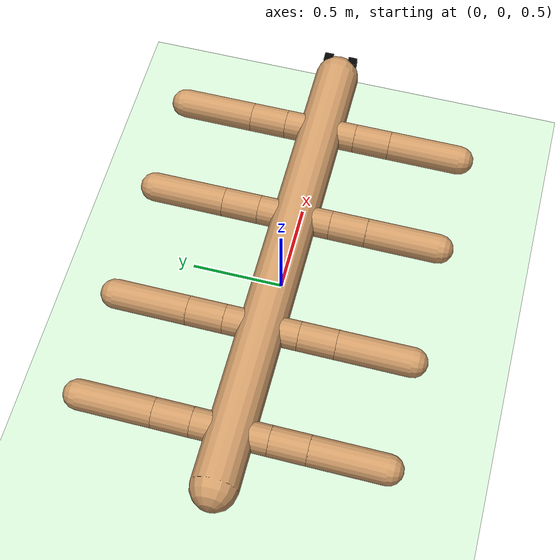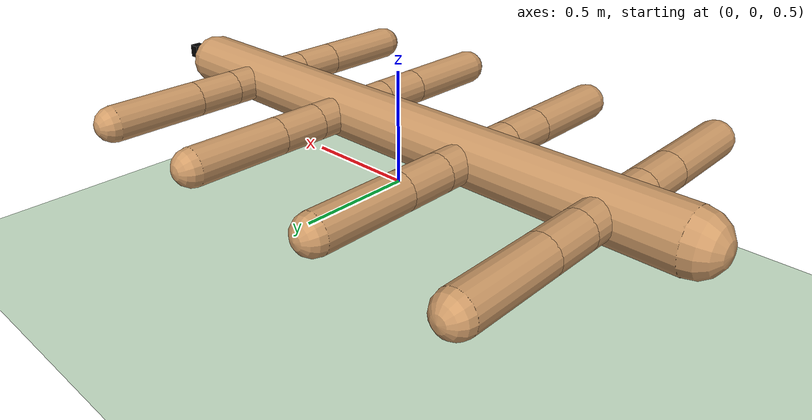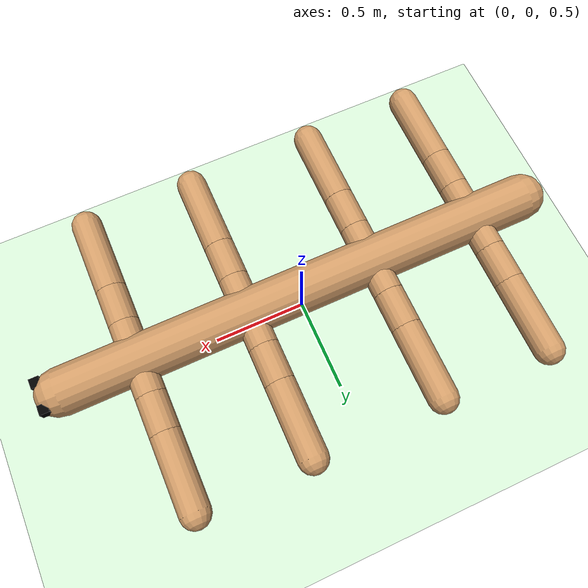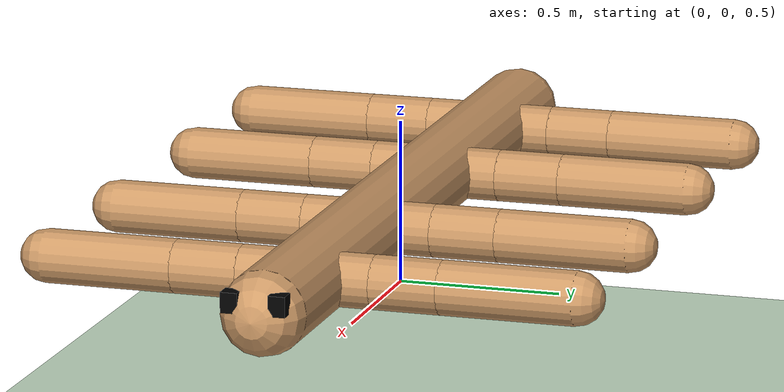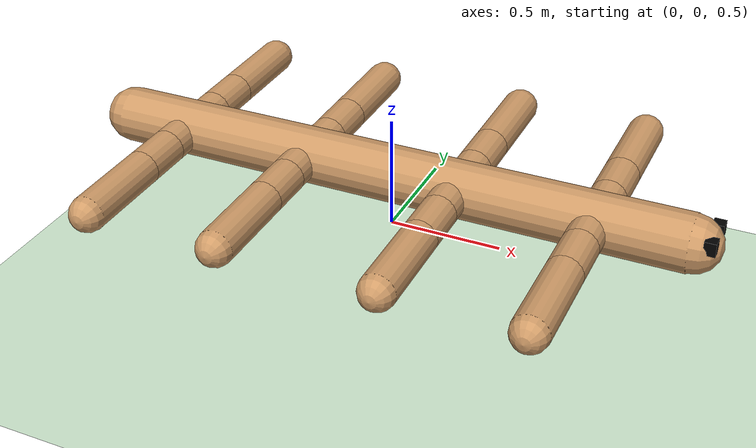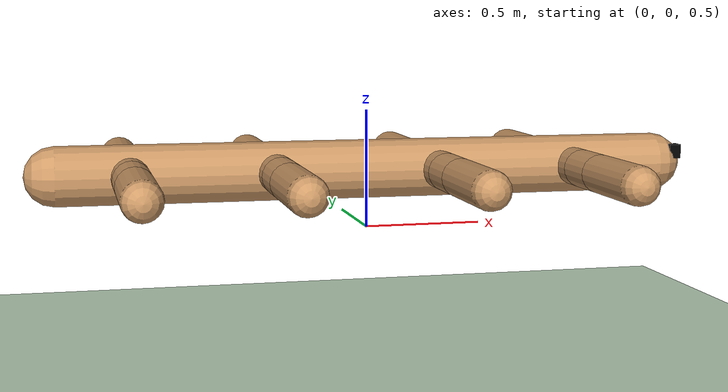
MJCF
<mujoco model="centipede">
  <compiler angle="degree" coordinate="local" inertiafromgeom="true"/>
  <option integrator="RK4" timestep="0.01"/>
  <custom>
    <numeric data="0.0 0.0 0.55 1.0 0.0 0.0 0.0 0.0 1.0 0.0 -1.0 0.0 -1.0 0.0 1.0" name="init_qpos"/>
  </custom>
  <default>
    <joint armature="1" damping="1" limited="true"/>
    <geom conaffinity="0" condim="3" density="5.0" friction="1 0.5 0.5" margin="0.01" rgba="0.8 0.6 0.4 1"/>
  </default>
  <asset>
    <texture builtin="gradient" height="100" rgb1="1 1 1" rgb2="0 0 0" type="skybox" width="100"/>
    <texture builtin="flat" height="1278" mark="cross" markrgb="1 1 1" name="texgeom" random="0.01" rgb1="0.8 0.6 0.4" rgb2="0.8 0.6 0.4" type="cube" width="127"/>
    <texture builtin="checker" height="100" name="texplane" rgb1="0 0 0" rgb2="0.8 0.8 0.8" type="2d" width="100"/>
    <material name="MatPlane" reflectance="0.5" shininess="1" specular="1" texrepeat="60 60" />#texture="texplane"
    <material name="geom" texture="texgeom" texuniform="true"/>
  </asset>
  <worldbody>
    <light cutoff="100" diffuse="1 1 1" dir="-0 0 -1.3" directional="true" exponent="1" pos="0 0 1.3" specular=".1 .1 .1"/>
    <geom conaffinity="1" condim="3" material="MatPlane" name="floor" pos="0 0 0" rgba="0.8 0.9 0.8 1" size="40 40 40" type="plane"/>
    <body name="torso" pos="0 0 0.75">
      <camera name="track" mode="trackcom" pos="0 -3 0.3" xyaxes="1 0 0 0 0 1"/>
      <geom name="torso_geom" axisangle="0 1 0 90" pos="0 0 0" size="0.125 1.3" type="capsule" mass='5'/>
	<geom  name="earL" pos="1.38 0.07 .05" size="0.025 0.025 0.03" rgba="0 0 0 1" type="box"/>
	<geom  name="earR" pos="1.38 -0.07 .05" size="0.025 0.025 0.03" rgba="0 0 0 1" type="box"/>

       <joint armature="0" damping="0" limited="false" margin="0.01" name="root" pos="0 0 0" type="free"/>
      <body name="frontl_leg" pos="0.9 0 0">
        <geom fromto="0.0 0.0 0.0 0.0 0.2 0.0" name="aux_1_geom" size="0.08" type="capsule"/>
        <body name="aux_1" pos="0.0 0.2 0">
          <joint axis="0 0 1" name="hip_1" pos="0.0 0.0 0.0" range="-30 30" type="hinge"/>
          <geom fromto="0.0 0.0 0.0 0.0 0.2 0.0" name="frontl_leg_geom" size="0.08" type="capsule"/>
          <body pos="0.0 0.2 0">
            <joint axis="-1 1 0" name="ankle_1" pos="0.0 0.0 0.0" range="30 70" type="hinge"/>
            <geom fromto="0.0 0.0 0.0 0.0 0.4 0.0" name="frontl_ankle_geom" size="0.08" type="capsule"/>
          </body>
        </body>
      </body>
      <body name="frontr_leg" pos="0.9 0 0">
        <geom fromto="0.0 0.0 0.0 0 -0.2 0.0" name="aux_2_geom" size="0.08" type="capsule"/>
        <body name="aux_2" pos="0 -0.2 0">
          <joint axis="0 0 1" name="hip_2" pos="0.0 0.0 0.0" range="-30 30" type="hinge"/>
          <geom fromto="0.0 0.0 0.0 0 -0.2 0.0" name="frontr_leg_geom" size="0.08" type="capsule"/>
          <body pos="0 -0.2 0">
            <joint axis="-1 1 0" name="ankle_2" pos="0.0 0.0 0.0" range="-70 -30" type="hinge"/>
            <geom fromto="0.0 0.0 0.0 0 -0.4 0.0" name="frontr_ankle_geom" size="0.08" type="capsule"/>
          </body>
        </body>
      </body>

     <body name="middlel_leg" pos="0.3 0 0">
        <geom fromto="0.0 0.0 0.0 0.0 0.2 0.0" name="aux_3_geom" size="0.08" type="capsule"/>
        <body name="aux_3" pos="0.0 0.2 0">
          <joint axis="0 0 1" name="hip_3" pos="0.0 0.0 0.0" range="-30 30" type="hinge"/>
          <geom fromto="0.0 0.0 0.0 0.0 0.2 0.0" name="middlel_leg_geom" size="0.08" type="capsule"/>
          <body pos="0.0 0.2 0">
            <joint axis="-1 1 0" name="ankle_3" pos="0.0 0.0 0.0" range="30 70" type="hinge"/>
            <geom fromto="0.0 0.0 0.0 0.0 0.4 0.0" name="middlel_ankle_geom" size="0.08" type="capsule"/>
          </body>
        </body>
      </body>
      <body name="middler_leg" pos="0.3 0 0">
        <geom fromto="0.0 0.0 0.0 0 -0.2 0.0" name="aux_4_geom" size="0.08" type="capsule"/>
        <body name="aux_4" pos="0 -0.2 0">
          <joint axis="0 0 1" name="hip_4" pos="0.0 0.0 0.0" range="-30 30" type="hinge"/>
          <geom fromto="0.0 0.0 0.0 0 -0.2 0.0" name="middler_leg_geom" size="0.08" type="capsule"/>
          <body pos="0 -0.2 0">
            <joint axis="-1 1 0" name="ankle_4" pos="0.0 0.0 0.0" range="-70 -30" type="hinge"/>
            <geom fromto="0.0 0.0 0.0 0 -0.4 0.0" name="middler_ankle_geom" size="0.08" type="capsule"/>
          </body>
        </body>
      </body>

     <body name="backl_leg" pos="-0.4 0 0">
        <geom fromto="0.0 0.0 0.0 0.0 0.2 0.0" name="aux_5_geom" size="0.08" type="capsule"/>
        <body name="aux_5" pos="0.0 0.2 0">
          <joint axis="0 0 1" name="hip_5" pos="0.0 0.0 0.0" range="-30 30" type="hinge"/>
          <geom fromto="0.0 0.0 0.0 0.0 0.2 0.0" name="backl_leg_geom" size="0.08" type="capsule"/>
          <body pos="0.0 0.2 0">
            <joint axis="-1 1 0" name="ankle_5" pos="0.0 0.0 0.0" range="30 70" type="hinge"/>
            <geom fromto="0.0 0.0 0.0 0.0 0.4 0.0" name="backl_ankle_geom" size="0.08" type="capsule"/>
          </body>
        </body>
      </body>
      <body name="backr_leg" pos="-0.4 0 0">
        <geom fromto="0.0 0.0 0.0 0 -0.2 0.0" name="aux_6_geom" size="0.08" type="capsule"/>
        <body name="aux_6" pos="0 -0.2 0">
          <joint axis="0 0 1" name="hip_6" pos="0.0 0.0 0.0" range="-30 30" type="hinge"/>
          <geom fromto="0.0 0.0 0.0 0 -0.2 0.0" name="backr_leg_geom" size="0.08" type="capsule"/>
          <body pos="0 -0.2 0">
            <joint axis="-1 1 0" name="ankle_6" pos="0.0 0.0 0.0" range="-70 -30" type="hinge"/>
            <geom fromto="0.0 0.0 0.0 0 -0.4 0.0" name="backr_ankle_geom" size="0.08" type="capsule"/>
          </body>
        </body>
      </body>

     <body name="endl_leg" pos="-1 0 0">
        <geom fromto="0.0 0.0 0.0 0.0 0.2 0.0" name="aux_7_geom" size="0.08" type="capsule"/>
        <body name="aux_7" pos="0.0 0.2 0">
          <joint axis="0 0 1" name="hip_7" pos="0.0 0.0 0.0" range="-30 30" type="hinge"/>
          <geom fromto="0.0 0.0 0.0 0.0 0.2 0.0" name="endl_leg_geom" size="0.08" type="capsule"/>
          <body pos="0.0 0.2 0">
            <joint axis="-1 1 0" name="ankle_7" pos="0.0 0.0 0.0" range="30 70" type="hinge"/>
            <geom fromto="0.0 0.0 0.0 0.0 0.4 0.0" name="endl_ankle_geom" size="0.08" type="capsule"/>
          </body>
        </body>
      </body>
      <body name="endr_leg" pos="-1 0 0">
        <geom fromto="0.0 0.0 0.0 0 -0.2 0.0" name="aux_8_geom" size="0.08" type="capsule"/>
        <body name="aux_8" pos="0 -0.2 0">
          <joint axis="0 0 1" name="hip_8" pos="0.0 0.0 0.0" range="-30 30" type="hinge"/>
          <geom fromto="0.0 0.0 0.0 0 -0.2 0.0" name="endr_leg_geom" size="0.08" type="capsule"/>
          <body pos="0 -0.2 0">
            <joint axis="-1 1 0" name="ankle_8" pos="0.0 0.0 0.0" range="-70 -30" type="hinge"/>
            <geom fromto="0.0 0.0 0.0 0 -0.4 0.0" name="endr_ankle_geom" size="0.08" type="capsule"/>
          </body>
        </body>
      </body>
    </body>

  </worldbody>
  <actuator>

    <motor ctrllimited="true" ctrlrange="-1.0 1.0" joint="hip_1" gear="150"/>
    <motor ctrllimited="true" ctrlrange="-1.0 1.0" joint="ankle_1" gear="150"/>

    <motor ctrllimited="true" ctrlrange="-1.0 1.0" joint="hip_2" gear="150"/>
    <motor ctrllimited="true" ctrlrange="-1.0 1.0" joint="ankle_2" gear="150"/>

    <motor ctrllimited="true" ctrlrange="-1.0 1.0" joint="hip_3" gear="150"/>
    <motor ctrllimited="true" ctrlrange="-1.0 1.0" joint="ankle_3" gear="150"/>

    <motor ctrllimited="true" ctrlrange="-1.0 1.0" joint="hip_4" gear="150"/>
    <motor ctrllimited="true" ctrlrange="-1.0 1.0" joint="ankle_4" gear="150"/>

    <motor ctrllimited="true" ctrlrange="-1.0 1.0" joint="hip_5" gear="150"/>
    <motor ctrllimited="true" ctrlrange="-1.0 1.0" joint="ankle_5" gear="150"/>

    <motor ctrllimited="true" ctrlrange="-1.0 1.0" joint="hip_6" gear="150"/>
    <motor ctrllimited="true" ctrlrange="-1.0 1.0" joint="ankle_6" gear="150"/>

    <motor ctrllimited="true" ctrlrange="-1.0 1.0" joint="hip_7" gear="150"/>
    <motor ctrllimited="true" ctrlrange="-1.0 1.0" joint="ankle_7" gear="150"/>

    <motor ctrllimited="true" ctrlrange="-1.0 1.0" joint="hip_8" gear="150"/>
    <motor ctrllimited="true" ctrlrange="-1.0 1.0" joint="ankle_8" gear="150"/>
  </actuator>
</mujoco>
